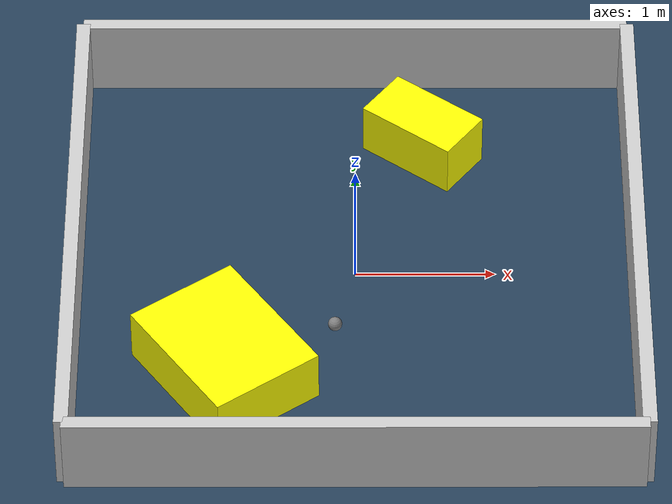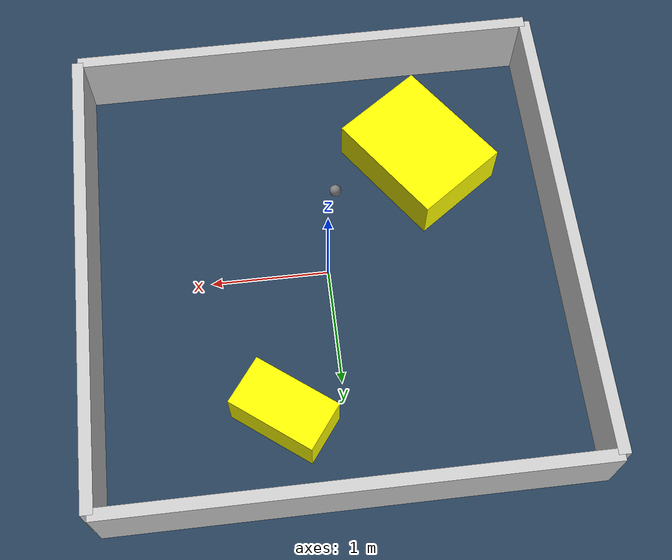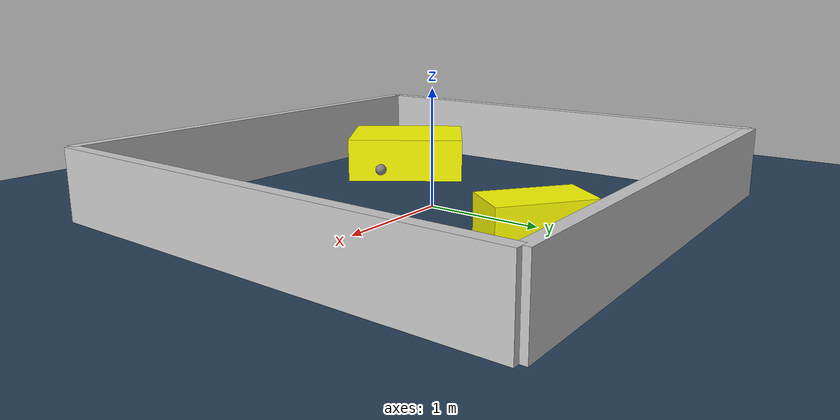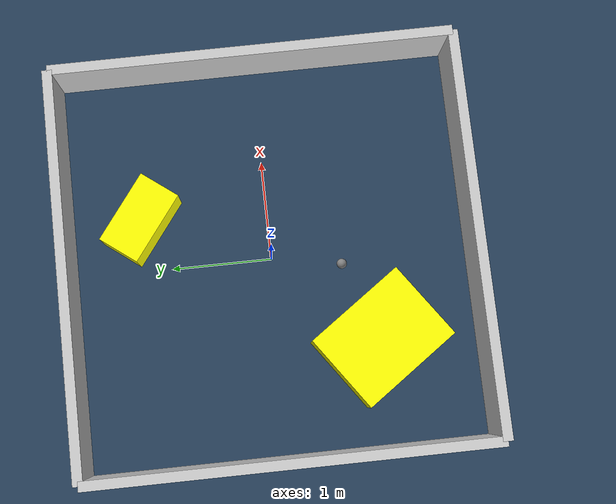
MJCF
<?xml version="1.0" ?>
<mujoco model="generated_environment">
  <option timestep="0.01" integrator="RK4" cone="elliptic"/>
  <default>
    <geom density="1"/>
  </default>
  <asset>
    <texture builtin="gradient" height="3072" rgb1="0.3 0.5 0.7" rgb2="0 0 0" type="skybox" width="512"/>
    <texture builtin="checker" height="300" mark="edge" markrgb="0.8 0.8 0.8" name="groundplane" rgb1="0.2 0.3 0.4" rgb2="0.1 0.2 0.3" type="2d" width="300"/>
    <material name="groundplane" reflectance="0.2" texrepeat="5 5" texture="groundplane" texuniform="true"/>
    <material name="robot" rgba="0.0 1.0 0.0 1"/>
  </asset>
  <worldbody>
    <light dir="0 0 -1" directional="true" pos="0 0 1.5"/>
    <geom condim="4" friction="1.0 0.005 0.001" material="groundplane" name="floor" size="0 0 0.05" type="plane"/>
    <body name="walls">
      <geom name="wall_1" condim="4" pos="-2.0 0.0 0.3" rgba="0.800000011920929 0.800000011920929 0.800000011920929 1.0" size="0.05 2.0 0.3" type="box"/>
      <geom name="wall_2" condim="4" pos="2.0 0.0 0.3" rgba="0.800000011920929 0.800000011920929 0.800000011920929 1.0" size="0.05 2.0 0.3" type="box"/>
      <geom name="wall_3" condim="4" pos="0.0 -2.0 0.3" rgba="0.800000011920929 0.800000011920929 0.800000011920929 1.0" size="2.0 0.05 0.3" type="box"/>
      <geom name="wall_4" condim="4" pos="0.0 2.0 0.3" rgba="0.800000011920929 0.800000011920929 0.800000011920929 1.0" size="2.0 0.05 0.3" type="box"/>
    </body>
    <body name="robot">
      <joint name="joint_x" type="slide" pos="0 0 0" axis="1 0 0"/>
      <joint name="joint_y" type="slide" pos="0 0 0" axis="0 1 0"/>
      <geom name="robot" type="sphere" pos="-0.14187519504501034 -0.6869085626398626 0.2" size="0.05" mass="5." friction="1.0 0.005 0.0001" condim="4"/>
      <site name="sensor_ball"/>
    </body>
    <body name="obstacle_1_movable">
      <geom name="obstacle_1_movable" condim="4" pos="-0.9131902374481958 -0.9908287851158548 0.2" euler="0 0 35.2931994765659" friction="1.0 0.005 0.001" rgba="1 1 0 1" size="0.4234924709448723 0.5429125521684011 0.2" type="box" mass="0.1"/>
      <joint type="free"/>
    </body>
    <body name="obstacle_2_movable">
      <geom name="obstacle_2_movable" condim="4" pos="0.4925093324599654 1.2492022739828181 0.2" euler="0 0 143.13643652297694" friction="1.0 0.005 0.001" rgba="1 1 0 1" size="0.38289946672144215 0.21505443584193473 0.2" type="box" mass="0.1"/>
      <joint type="free"/>
    </body>
  </worldbody>
  <actuator>
    <motor name="actuator_x" joint="joint_x" gear="1" ctrlrange="-1 1"/>
    <motor name="actuator_y" joint="joint_y" gear="1" ctrlrange="-1 1"/>
  </actuator>
</mujoco>
